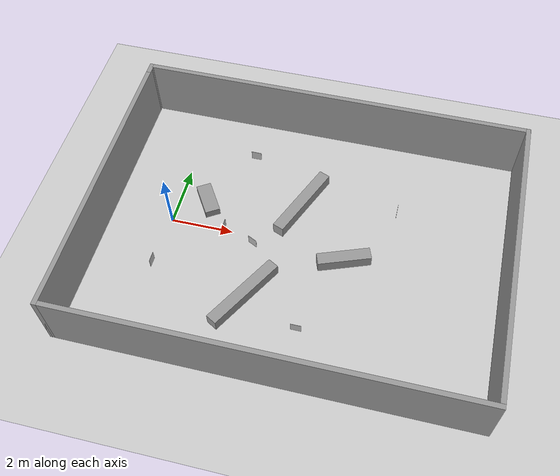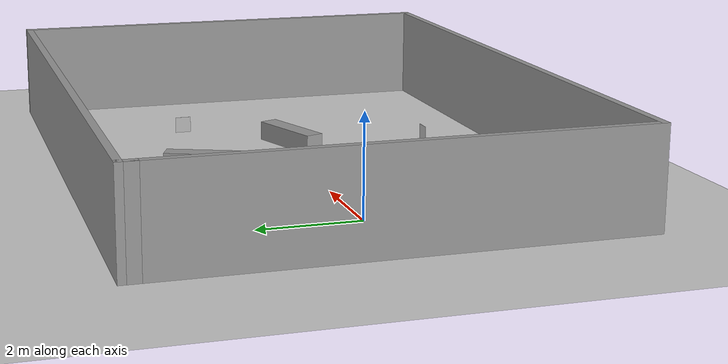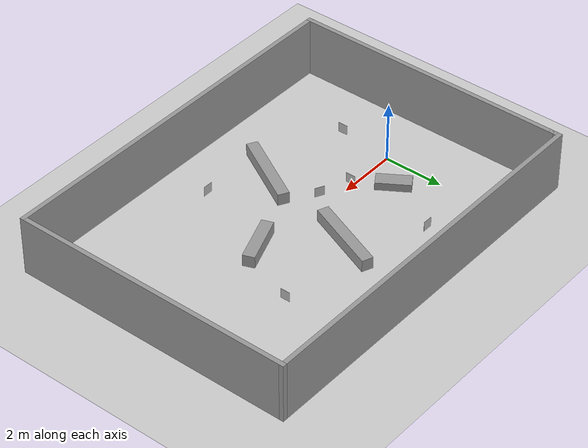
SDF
<sdf version="1.6">
 <world name="default">
  <light name="sun" type="directional">
   <pose>0 0 10 0 -0 0</pose>
   <diffuse>0.8 0.8 0.8 1</diffuse>
   <specular>0.2 0.2 0.2 1</specular>
   <attenuation>
    <range>1000</range>
    <constant>0.9</constant>
    <linear>0.01</linear>
    <quadratic>0.001</quadratic>
   </attenuation>
   <direction>-0.5 0.1 -0.9</direction>
  </light>
  <model name="ground_plane">
   <static>1</static>
   <link name="link">
    <collision name="collision">
     <geometry><plane><normal>0 0 1</normal><size>100 100</size></plane></geometry>
     <surface><friction><ode><mu>100</mu><mu2>50</mu2></ode></friction></surface>
    </collision>
    <visual name="visual">
     <cast_shadows>0</cast_shadows>
     <geometry><plane><normal>0 0 1</normal><size>100 100</size></plane></geometry>
     <material>
      <script><uri>file://media/materials/scripts/gazebo.material</uri><name>Gazebo/Grey</name></script>
     </material>
    </visual>
   </link>
  </model>
  <gravity>0 0 -9.8</gravity>
  <magnetic_field>6e-06 2.3e-05 -4.2e-05</magnetic_field>
  <atmosphere type="adiabatic"/>
  <physics name="default_physics" default="0" type="ode">
   <max_step_size>0.001</max_step_size>
   <real_time_factor>1</real_time_factor>
   <real_time_update_rate>1000</real_time_update_rate>
  </physics>
  <scene><ambient>0.4 0.4 0.4 1</ambient><background>0.7 0.7 0.7 1</background><shadows>1</shadows></scene>
  <audio><device>default</device></audio>
  <spherical_coordinates>
   <surface_model>EARTH_WGS84</surface_model>
   <latitude_deg>0</latitude_deg>
   <longitude_deg>0</longitude_deg>
   <elevation>0</elevation>
   <heading_deg>0</heading_deg>
  </spherical_coordinates>
  <model name="Aruco tag0">
   <static>1</static>
   <link name="robot_link">
    <visual name="front_visual">
     <pose>0 0 0.0025 0 -0 0</pose>
     <geometry><box><size>0.33 0.33 0.005</size></box></geometry>
     <material>
      <script>
       <uri>model://tag_0/materials/scripts/</uri>
       <uri>model://tag_0/materials/textures/</uri>
       <name>Aruco/tag0</name>
      </script>
     </material>
    </visual>
    <visual name="rear_visual">
     <pose>0 0 -0.0025 0 -0 -3.14159</pose>
     <geometry><box><size>0.33 0.33 0.005</size></box></geometry>
    </visual>
   </link>
   <pose>1.75577 -0.01544 0.300001 -1.57005 -1.57 1.57005</pose>
  </model>
  <model name="room">
   <pose>4.24359 -0.002696 -0.539076 0 -0 0</pose>
   <link name="Wall_23">
    <collision name="Wall_23_Collision">
     <geometry><box><size>9.25 0.15 2.5</size></box></geometry>
     <pose>0 0 1.25 0 -0 0</pose>
    </collision>
    <visual name="Wall_23_Visual">
     <pose>0 0 1.25 0 -0 0</pose>
     <geometry><box><size>9.25 0.15 2.5</size></box></geometry>
     <material>
      <script><uri>file://media/materials/scripts/gazebo.material</uri><name>Gazebo/Grey</name></script>
      <ambient>1 1 1 1</ambient>
     </material>
     <meta><layer>0</layer></meta>
    </visual>
    <pose>-6.3 -0.125 0 0 -0 -1.5708</pose>
   </link>
   <link name="Wall_24">
    <collision name="Wall_24_Collision">
     <geometry><box><size>12.75 0.15 2.5</size></box></geometry>
     <pose>0 0 1.25 0 -0 0</pose>
    </collision>
    <visual name="Wall_24_Visual">
     <pose>0 0 1.25 0 -0 0</pose>
     <geometry><box><size>12.75 0.15 2.5</size></box></geometry>
     <material>
      <script><uri>file://media/materials/scripts/gazebo.material</uri><name>Gazebo/Grey</name></script>
      <ambient>1 1 1 1</ambient>
     </material>
     <meta><layer>0</layer></meta>
    </visual>
    <pose>-0 -4.675 0 0 -0 0</pose>
   </link>
   <link name="Wall_25">
    <collision name="Wall_25_Collision">
     <geometry><box><size>9.5 0.15 2.5</size></box></geometry>
     <pose>0 0 1.25 0 -0 0</pose>
    </collision>
    <visual name="Wall_25_Visual">
     <pose>0 0 1.25 0 -0 0</pose>
     <geometry><box><size>9.5 0.15 2.5</size></box></geometry>
     <material>
      <script><uri>file://media/materials/scripts/gazebo.material</uri><name>Gazebo/Grey</name></script>
      <ambient>1 1 1 1</ambient>
     </material>
     <meta><layer>0</layer></meta>
    </visual>
    <pose>6.3 0 0 0 -0 1.5708</pose>
   </link>
   <link name="Wall_26">
    <collision name="Wall_26_Collision">
     <geometry><box><size>12.75 0.15 2.5</size></box></geometry>
     <pose>0 0 1.25 0 -0 0</pose>
    </collision>
    <visual name="Wall_26_Visual">
     <pose>0 0 1.25 0 -0 0</pose>
     <geometry><box><size>12.75 0.15 2.5</size></box></geometry>
     <material>
      <script><uri>file://media/materials/scripts/gazebo.material</uri><name>Gazebo/Grey</name></script>
      <ambient>1 1 1 1</ambient>
     </material>
     <meta><layer>0</layer></meta>
    </visual>
    <pose>-0 4.675 0 0 -0 3.14159</pose>
   </link>
   <link name="Wall_27">
    <collision name="Wall_27_Collision">
     <geometry><box><size>0.4 0.15 2.5</size></box></geometry>
     <pose>0 0 1.25 0 -0 0</pose>
    </collision>
    <visual name="Wall_27_Visual">
     <pose>0 0 1.25 0 -0 0</pose>
     <geometry><box><size>0.4 0.15 2.5</size></box></geometry>
     <material>
      <script><uri>file://media/materials/scripts/gazebo.material</uri><name>Gazebo/Grey</name></script>
      <ambient>1 1 1 1</ambient>
     </material>
     <meta><layer>0</layer></meta>
    </visual>
    <pose>-6.3 4.55 0 0 -0 -1.5708</pose>
   </link>
   <static>1</static>
  </model>
  <model name="unit_box_0_clone">
   <pose>3.92535 1.49145 0.197769 -0 -0.000119 -1.95589</pose>
   <link name="link">
    <inertial>
     <mass>1</mass>
     <inertia>
      <ixx>0.166667</ixx>
      <ixy>0</ixy>
      <ixz>0</ixz>
      <iyy>0.166667</iyy>
      <iyz>0</iyz>
      <izz>0.166667</izz>
     </inertia>
    </inertial>
    <collision name="collision"><geometry><box><size>2.60321 0.367688 0.395847</size></box></geometry></collision>
    <visual name="visual">
     <geometry><box><size>2.60321 0.367688 0.395847</size></box></geometry>
     <material>
      <script><name>Gazebo/Grey</name><uri>file://media/materials/scripts/gazebo.material</uri></script>
     </material>
    </visual>
   </link>
  </model>
  <model name="Aruco tag1">
   <static>1</static>
   <link name="robot_link">
    <visual name="front_visual">
     <geometry><box><size>0.33 0.33 0.005</size></box></geometry>
     <material>
      <script>
       <uri>file://tag_1/materials/scripts/</uri>
       <uri>file://tag_1/materials/textures/</uri>
       <name>Aruco/tag1</name>
      </script>
     </material>
    </visual>
    <visual name="rear_visual">
     <pose>0 0 -0.0025 0 -0 -3.14159</pose>
     <geometry><box><size>0.33 0.33 0.005</size></box></geometry>
     <material>
      <script>
       <uri>file://tag_1/materials/scripts/</uri>
       <uri>file://tag_1/materials/textures/</uri>
       <name>Aruco/tag1</name>
      </script>
     </material>
    </visual>
   </link>
   <pose>2.78357 -0.361909 0.285079 1.56185 0.000377 -0.457785</pose>
  </model>
  <model name="Aruco tag2">
   <static>1</static>
   <link name="robot_link">
    <visual name="front_visual">
     <geometry><box><size>0.33 0.33 0.005</size></box></geometry>
     <material>
      <script>
       <uri>file://tag_2/materials/scripts/</uri>
       <uri>file://tag_2/materials/textures/</uri>
       <name>Aruco/tag2</name>
      </script>
     </material>
    </visual>
    <visual name="rear_visual">
     <pose>0 0 -0.0025 0 -0 -3.14159</pose>
     <geometry><box><size>0.33 0.33 0.005</size></box></geometry>
     <material>
      <script>
       <uri>file://tag_2/materials/scripts/</uri>
       <uri>file://tag_2/materials/textures/</uri>
       <name>Aruco/tag2</name>
      </script>
     </material>
    </visual>
   </link>
   <pose>6.98489 1.79676 0.298549 1.5708 0.000796 1.57413</pose>
  </model>
  <model name="unit_box_0_clone_clone">
   <pose>5.67504 -0.28626 0.197923 0 -0 0.362901</pose>
   <link name="link">
    <inertial>
     <mass>1</mass>
     <inertia>
      <ixx>0.166667</ixx>
      <ixy>0</ixy>
      <ixz>0</ixz>
      <iyy>0.166667</iyy>
      <iyz>0</iyz>
      <izz>0.166667</izz>
     </inertia>
    </inertial>
    <collision name="collision"><geometry><box><size>1.66245 0.387739 0.395847</size></box></geometry></collision>
    <visual name="visual">
     <geometry><box><size>1.66245 0.387739 0.395847</size></box></geometry>
     <material>
      <script><name>Gazebo/Grey</name><uri>file://media/materials/scripts/gazebo.material</uri></script>
     </material>
    </visual>
   </link>
  </model>
  <model name="unit_box_0_clone_clone_clone">
   <pose>2.99682 -2.17845 0.197765 0 0.000121 1.0607</pose>
   <link name="link">
    <inertial>
     <mass>1</mass>
     <inertia>
      <ixx>0.166667</ixx>
      <ixy>0</ixy>
      <ixz>0</ixz>
      <iyy>0.166667</iyy>
      <iyz>0</iyz>
      <izz>0.166667</izz>
     </inertia>
    </inertial>
    <collision name="collision"><geometry><box><size>2.63325 0.367688 0.395847</size></box></geometry></collision>
    <visual name="visual">
     <geometry><box><size>2.63325 0.367688 0.395847</size></box></geometry>
     <material>
      <script><name>Gazebo/Grey</name><uri>file://media/materials/scripts/gazebo.material</uri></script>
     </material>
    </visual>
   </link>
  </model>
  <model name="Aruco tag5">
   <static>1</static>
   <link name="robot_link">
    <visual name="front_visual">
     <geometry><box><size>0.33 0.33 0.005</size></box></geometry>
     <material>
      <script>
       <uri>file://tag_5/materials/scripts/</uri>
       <uri>file://tag_5/materials/textures/</uri>
       <name>Aruco/tag5</name>
      </script>
     </material>
    </visual>
    <visual name="rear_visual">
     <pose>0 0 -0.0025 0 -0 -3.14159</pose>
     <geometry><box><size>0.33 0.33 0.005</size></box></geometry>
     <material>
      <script>
       <uri>file://tag_5/materials/scripts/</uri>
       <uri>file://tag_5/materials/textures/</uri>
       <name>Aruco/tag5</name>
      </script>
     </material>
    </visual>
   </link>
   <pose>2 3 0.3 1.57 -0 0</pose>
  </model>
  <model name="Aruco tag3">
   <static>1</static>
   <link name="robot_link">
    <visual name="front_visual">
     <geometry><box><size>0.33 0.33 0.005</size></box></geometry>
     <material>
      <script>
       <uri>file://tag_3/materials/scripts/</uri>
       <uri>file://tag_3/materials/textures/</uri>
       <name>Aruco/tag3</name>
      </script>
     </material>
    </visual>
    <visual name="rear_visual">
     <pose>0 0 -0.0025 0 -0 -3.14159</pose>
     <geometry><box><size>0.33 0.33 0.005</size></box></geometry>
     <material>
      <script>
       <uri>file://tag_3/materials/scripts/</uri>
       <uri>file://tag_3/materials/textures/</uri>
       <name>Aruco/tag3</name>
      </script>
     </material>
    </visual>
   </link>
   <pose>4.80092 -2.95911 0.3 1.57044 1.57 0.000435</pose>
  </model>
  <model name="unit_box_0">
   <pose>0.919603 0.953635 0.132146 0 -0 0.574933</pose>
   <link name="link">
    <inertial>
     <mass>1</mass>
     <inertia>
      <ixx>0.166667</ixx>
      <ixy>0</ixy>
      <ixz>0</ixz>
      <iyy>0.166667</iyy>
      <iyz>0</iyz>
      <izz>0.166667</izz>
     </inertia>
    </inertial>
    <collision name="collision"><geometry><box><size>0.473245 1.10894 0.264293</size></box></geometry></collision>
    <visual name="visual">
     <geometry><box><size>0.473245 1.10894 0.264293</size></box></geometry>
     <material>
      <script><name>Gazebo/Grey</name><uri>file://media/materials/scripts/gazebo.material</uri></script>
     </material>
    </visual>
   </link>
  </model>
  <model name="Aruco tag4">
   <static>1</static>
   <link name="robot_link">
    <visual name="front_visual">
     <geometry><box><size>0.33 0.33 0.005</size></box></geometry>
     <material>
      <script>
       <uri>file://tag_4/materials/scripts/</uri>
       <uri>file://tag_4/materials/textures/</uri>
       <name>Aruco/tag4</name>
      </script>
     </material>
    </visual>
    <visual name="rear_visual">
     <pose>0 0 -0.0025 0 -0 -3.14159</pose>
     <geometry><box><size>0.33 0.33 0.005</size></box></geometry>
     <material>
      <script>
       <uri>file://tag_4/materials/scripts/</uri>
       <uri>file://tag_4/materials/textures/</uri>
       <name>Aruco/tag4</name>
      </script>
     </material>
    </visual>
   </link>
   <pose>-0.036904 -1.72687 0.3 1.57 -0 1.57</pose>
  </model>
 </world>
</sdf>
